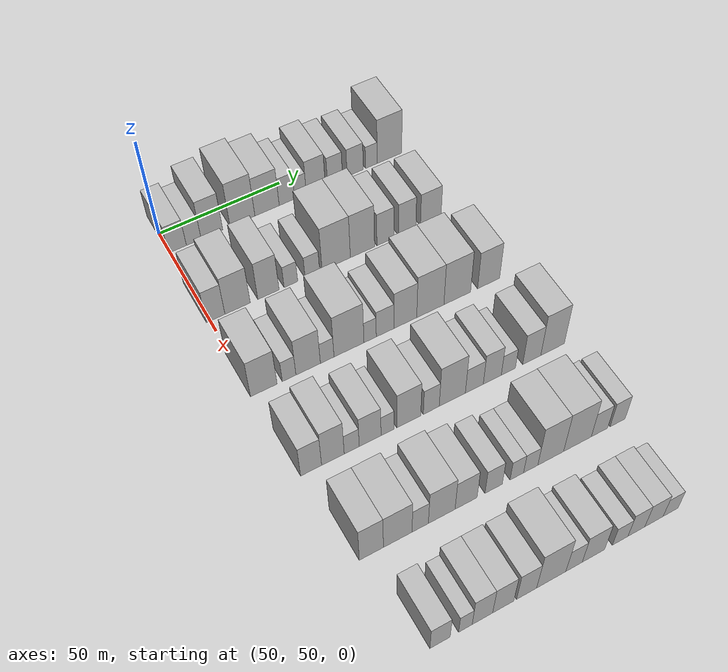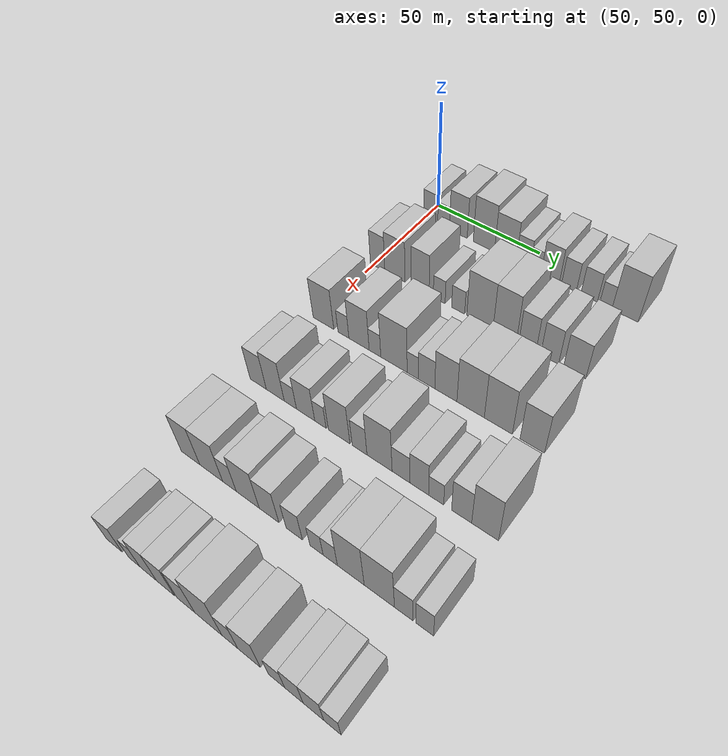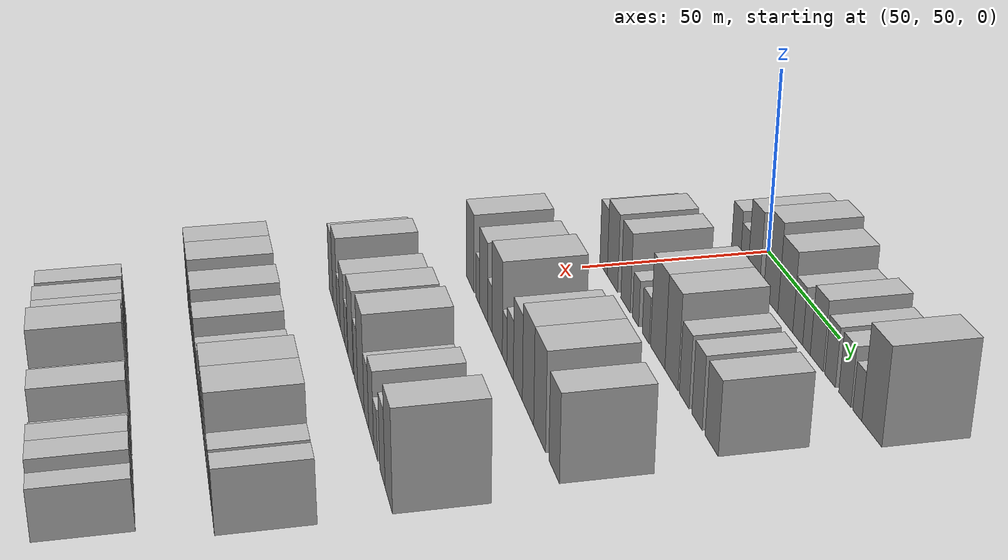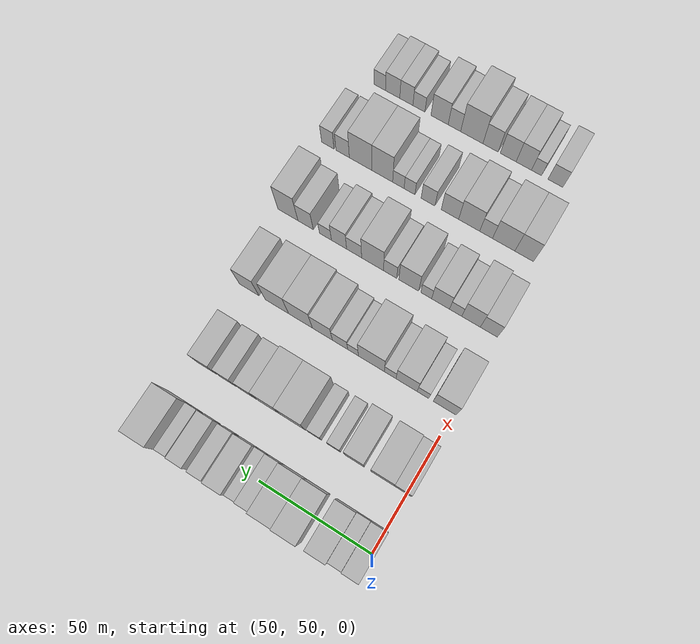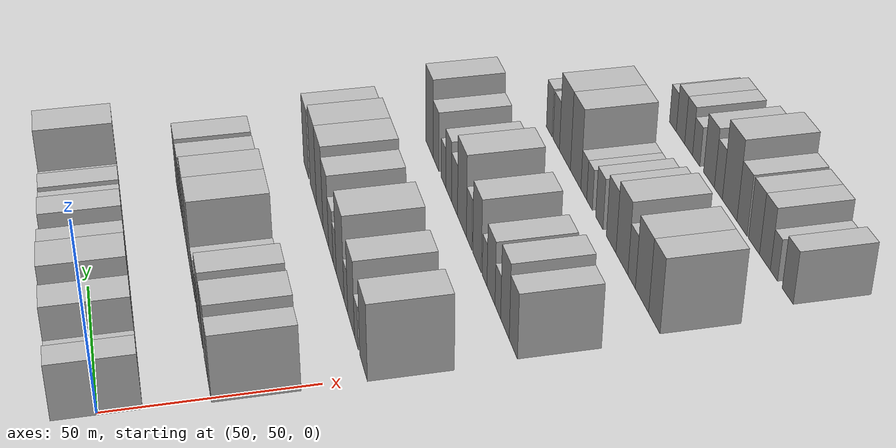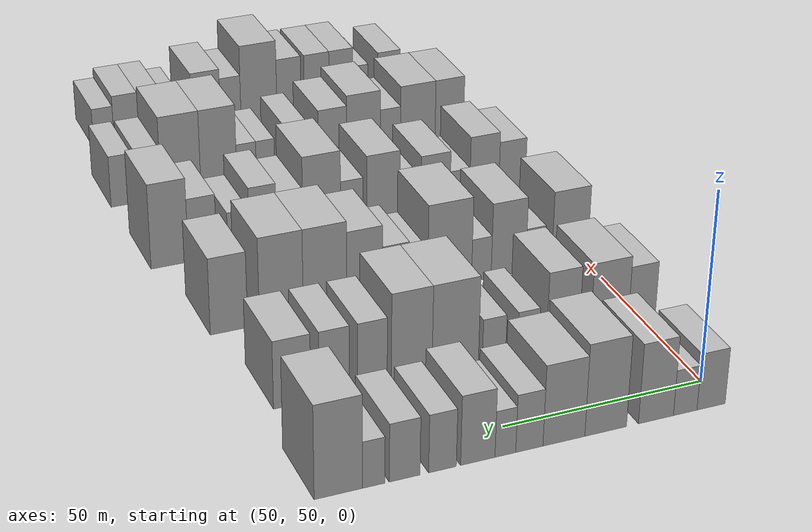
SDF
<sdf version="1.6">
 <world name="default">
  <model name="building_73">
   <static>1</static>
   <pose>50.0000 52.9617 0 0.000000 0.000000 0.000000</pose>
   <link name="link">
    <pose>0 0 7.50 0 0 0</pose>
    <collision name="collision"><geometry><box><size>20.0000 7.2405 15.0000</size></box></geometry></collision>
    <visual name="visual">
     <cast_shadows>0</cast_shadows>
     <geometry><box><size>20.0000 7.2405 15.0000</size></box></geometry>
     <material>
      <script>
       <uri>model://HANNAS_wall/materials/scripts</uri>
       <uri>model://HANNAS_wall/materials/textures</uri>
       <name>vrc/HANNAS_wall</name>
      </script>
     </material>
    </visual>
   </link>
  </model>
  <model name="building_74">
   <static>1</static>
   <pose>50.0000 59.5763 0 0.000000 0.000000 0.000000</pose>
   <link name="link">
    <pose>0 0 6.00 0 0 0</pose>
    <collision name="collision"><geometry><box><size>20.0000 5.9886 12.0000</size></box></geometry></collision>
    <visual name="visual">
     <cast_shadows>0</cast_shadows>
     <geometry><box><size>20.0000 5.9886 12.0000</size></box></geometry>
     <material>
      <script>
       <uri>model://HANNAS_wall/materials/scripts</uri>
       <uri>model://HANNAS_wall/materials/textures</uri>
       <name>vrc/HANNAS_wall</name>
      </script>
     </material>
    </visual>
   </link>
  </model>
  <model name="building_75">
   <static>1</static>
   <pose>50.0000 66.9861 0 0.000000 0.000000 0.000000</pose>
   <link name="link">
    <pose>0 0 10.50 0 0 0</pose>
    <collision name="collision"><geometry><box><size>20.0000 8.8310 21.0000</size></box></geometry></collision>
    <visual name="visual">
     <cast_shadows>0</cast_shadows>
     <geometry><box><size>20.0000 8.8310 21.0000</size></box></geometry>
     <material>
      <script>
       <uri>model://HANNAS_wall/materials/scripts</uri>
       <uri>model://HANNAS_wall/materials/textures</uri>
       <name>vrc/HANNAS_wall</name>
      </script>
     </material>
    </visual>
   </link>
  </model>
  <model name="building_76">
   <static>1</static>
   <pose>50.0000 79.5631 0 0.000000 0.000000 0.000000</pose>
   <link name="link">
    <pose>0 0 12.00 0 0 0</pose>
    <collision name="collision"><geometry><box><size>20.0000 10.3230 24.0000</size></box></geometry></collision>
    <visual name="visual">
     <cast_shadows>0</cast_shadows>
     <geometry><box><size>20.0000 10.3230 24.0000</size></box></geometry>
     <material>
      <script>
       <uri>model://HANNAS_wall/materials/scripts</uri>
       <uri>model://HANNAS_wall/materials/textures</uri>
       <name>vrc/HANNAS_wall</name>
      </script>
     </material>
    </visual>
   </link>
  </model>
  <model name="building_77">
   <static>1</static>
   <pose>50.0000 89.8498 0 0.000000 0.000000 0.000000</pose>
   <link name="link">
    <pose>0 0 10.50 0 0 0</pose>
    <collision name="collision"><geometry><box><size>20.0000 10.2505 21.0000</size></box></geometry></collision>
    <visual name="visual">
     <cast_shadows>0</cast_shadows>
     <geometry><box><size>20.0000 10.2505 21.0000</size></box></geometry>
     <material>
      <script>
       <uri>model://HANNAS_wall/materials/scripts</uri>
       <uri>model://HANNAS_wall/materials/textures</uri>
       <name>vrc/HANNAS_wall</name>
      </script>
     </material>
    </visual>
   </link>
  </model>
  <model name="building_78">
   <static>1</static>
   <pose>50.0000 98.2660 0 0.000000 0.000000 0.000000</pose>
   <link name="link">
    <pose>0 0 7.50 0 0 0</pose>
    <collision name="collision"><geometry><box><size>20.0000 6.5819 15.0000</size></box></geometry></collision>
    <visual name="visual">
     <cast_shadows>0</cast_shadows>
     <geometry><box><size>20.0000 6.5819 15.0000</size></box></geometry>
     <material>
      <script>
       <uri>model://HANNAS_wall/materials/scripts</uri>
       <uri>model://HANNAS_wall/materials/textures</uri>
       <name>vrc/HANNAS_wall</name>
      </script>
     </material>
    </visual>
   </link>
  </model>
  <model name="building_79">
   <static>1</static>
   <pose>50.0000 104.0453 0 0.000000 0.000000 0.000000</pose>
   <link name="link">
    <pose>0 0 6.00 0 0 0</pose>
    <collision name="collision"><geometry><box><size>20.0000 4.9766 12.0000</size></box></geometry></collision>
    <visual name="visual">
     <cast_shadows>0</cast_shadows>
     <geometry><box><size>20.0000 4.9766 12.0000</size></box></geometry>
     <material>
      <script>
       <uri>model://HANNAS_wall/materials/scripts</uri>
       <uri>model://HANNAS_wall/materials/textures</uri>
       <name>vrc/HANNAS_wall</name>
      </script>
     </material>
    </visual>
   </link>
  </model>
  <model name="building_80">
   <static>1</static>
   <pose>50.0000 110.6164 0 0.000000 0.000000 0.000000</pose>
   <link name="link">
    <pose>0 0 9.00 0 0 0</pose>
    <collision name="collision"><geometry><box><size>20.0000 8.1657 18.0000</size></box></geometry></collision>
    <visual name="visual">
     <cast_shadows>0</cast_shadows>
     <geometry><box><size>20.0000 8.1657 18.0000</size></box></geometry>
     <material>
      <script>
       <uri>model://HANNAS_wall/materials/scripts</uri>
       <uri>model://HANNAS_wall/materials/textures</uri>
       <name>vrc/HANNAS_wall</name>
      </script>
     </material>
    </visual>
   </link>
  </model>
  <model name="building_81">
   <static>1</static>
   <pose>50.0000 118.9523 0 0.000000 0.000000 0.000000</pose>
   <link name="link">
    <pose>0 0 7.50 0 0 0</pose>
    <collision name="collision"><geometry><box><size>20.0000 6.5061 15.0000</size></box></geometry></collision>
    <visual name="visual">
     <cast_shadows>0</cast_shadows>
     <geometry><box><size>20.0000 6.5061 15.0000</size></box></geometry>
     <material>
      <script>
       <uri>model://HANNAS_wall/materials/scripts</uri>
       <uri>model://HANNAS_wall/materials/textures</uri>
       <name>vrc/HANNAS_wall</name>
      </script>
     </material>
    </visual>
   </link>
  </model>
  <model name="building_82">
   <static>1</static>
   <pose>50.0000 127.7815 0 0.000000 0.000000 0.000000</pose>
   <link name="link">
    <pose>0 0 7.50 0 0 0</pose>
    <collision name="collision"><geometry><box><size>20.0000 7.1522 15.0000</size></box></geometry></collision>
    <visual name="visual">
     <cast_shadows>0</cast_shadows>
     <geometry><box><size>20.0000 7.1522 15.0000</size></box></geometry>
     <material>
      <script>
       <uri>model://HANNAS_wall/materials/scripts</uri>
       <uri>model://HANNAS_wall/materials/textures</uri>
       <name>vrc/HANNAS_wall</name>
      </script>
     </material>
    </visual>
   </link>
  </model>
  <model name="building_83">
   <static>1</static>
   <pose>50.0000 134.9458 0 0.000000 0.000000 0.000000</pose>
   <link name="link">
    <pose>0 0 6.00 0 0 0</pose>
    <collision name="collision"><geometry><box><size>20.0000 5.1764 12.0000</size></box></geometry></collision>
    <visual name="visual">
     <cast_shadows>0</cast_shadows>
     <geometry><box><size>20.0000 5.1764 12.0000</size></box></geometry>
     <material>
      <script>
       <uri>model://HANNAS_wall/materials/scripts</uri>
       <uri>model://HANNAS_wall/materials/textures</uri>
       <name>vrc/HANNAS_wall</name>
      </script>
     </material>
    </visual>
   </link>
  </model>
  <model name="building_84">
   <static>1</static>
   <pose>50.0000 143.0082 0 0.000000 0.000000 0.000000</pose>
   <link name="link">
    <pose>0 0 12.00 0 0 0</pose>
    <collision name="collision"><geometry><box><size>20.0000 10.9483 24.0000</size></box></geometry></collision>
    <visual name="visual">
     <cast_shadows>0</cast_shadows>
     <geometry><box><size>20.0000 10.9483 24.0000</size></box></geometry>
     <material>
      <script>
       <uri>model://HANNAS_wall/materials/scripts</uri>
       <uri>model://HANNAS_wall/materials/textures</uri>
       <name>vrc/HANNAS_wall</name>
      </script>
     </material>
    </visual>
   </link>
  </model>
  <model name="building_202">
   <static>1</static>
   <pose>85.0000 52.1849 0 0.000000 0.000000 0.000000</pose>
   <link name="link">
    <pose>0 0 9.00 0 0 0</pose>
    <collision name="collision"><geometry><box><size>20.0000 7.2502 18.0000</size></box></geometry></collision>
    <visual name="visual">
     <cast_shadows>0</cast_shadows>
     <geometry><box><size>20.0000 7.2502 18.0000</size></box></geometry>
     <material>
      <script>
       <uri>model://HANNAS_wall/materials/scripts</uri>
       <uri>model://HANNAS_wall/materials/textures</uri>
       <name>vrc/HANNAS_wall</name>
      </script>
     </material>
    </visual>
   </link>
  </model>
  <model name="building_203">
   <static>1</static>
   <pose>85.0000 60.8079 0 0.000000 0.000000 0.000000</pose>
   <link name="link">
    <pose>0 0 10.50 0 0 0</pose>
    <collision name="collision"><geometry><box><size>20.0000 9.9957 21.0000</size></box></geometry></collision>
    <visual name="visual">
     <cast_shadows>0</cast_shadows>
     <geometry><box><size>20.0000 9.9957 21.0000</size></box></geometry>
     <material>
      <script>
       <uri>model://HANNAS_wall/materials/scripts</uri>
       <uri>model://HANNAS_wall/materials/textures</uri>
       <name>vrc/HANNAS_wall</name>
      </script>
     </material>
    </visual>
   </link>
  </model>
  <model name="building_204">
   <static>1</static>
   <pose>85.0000 73.0740 0 0.000000 0.000000 0.000000</pose>
   <link name="link">
    <pose>0 0 10.50 0 0 0</pose>
    <collision name="collision"><geometry><box><size>20.0000 8.5366 21.0000</size></box></geometry></collision>
    <visual name="visual">
     <cast_shadows>0</cast_shadows>
     <geometry><box><size>20.0000 8.5366 21.0000</size></box></geometry>
     <material>
      <script>
       <uri>model://HANNAS_wall/materials/scripts</uri>
       <uri>model://HANNAS_wall/materials/textures</uri>
       <name>vrc/HANNAS_wall</name>
      </script>
     </material>
    </visual>
   </link>
  </model>
  <model name="building_205">
   <static>1</static>
   <pose>85.0000 82.1059 0 0.000000 0.000000 0.000000</pose>
   <link name="link">
    <pose>0 0 6.00 0 0 0</pose>
    <collision name="collision"><geometry><box><size>20.0000 5.5271 12.0000</size></box></geometry></collision>
    <visual name="visual">
     <cast_shadows>0</cast_shadows>
     <geometry><box><size>20.0000 5.5271 12.0000</size></box></geometry>
     <material>
      <script>
       <uri>model://HANNAS_wall/materials/scripts</uri>
       <uri>model://HANNAS_wall/materials/textures</uri>
       <name>vrc/HANNAS_wall</name>
      </script>
     </material>
    </visual>
   </link>
  </model>
  <model name="building_206">
   <static>1</static>
   <pose>85.0000 90.8589 0 0.000000 0.000000 0.000000</pose>
   <link name="link">
    <pose>0 0 6.00 0 0 0</pose>
    <collision name="collision"><geometry><box><size>20.0000 5.9788 12.0000</size></box></geometry></collision>
    <visual name="visual">
     <cast_shadows>0</cast_shadows>
     <geometry><box><size>20.0000 5.9788 12.0000</size></box></geometry>
     <material>
      <script>
       <uri>model://HANNAS_wall/materials/scripts</uri>
       <uri>model://HANNAS_wall/materials/textures</uri>
       <name>vrc/HANNAS_wall</name>
      </script>
     </material>
    </visual>
   </link>
  </model>
  <model name="building_207">
   <static>1</static>
   <pose>85.0000 100.7156 0 0.000000 0.000000 0.000000</pose>
   <link name="link">
    <pose>0 0 12.00 0 0 0</pose>
    <collision name="collision"><geometry><box><size>20.0000 11.7346 24.0000</size></box></geometry></collision>
    <visual name="visual">
     <cast_shadows>0</cast_shadows>
     <geometry><box><size>20.0000 11.7346 24.0000</size></box></geometry>
     <material>
      <script>
       <uri>model://HANNAS_wall/materials/scripts</uri>
       <uri>model://HANNAS_wall/materials/textures</uri>
       <name>vrc/HANNAS_wall</name>
      </script>
     </material>
    </visual>
   </link>
  </model>
  <model name="building_208">
   <static>1</static>
   <pose>85.0000 111.6747 0 0.000000 0.000000 0.000000</pose>
   <link name="link">
    <pose>0 0 12.00 0 0 0</pose>
    <collision name="collision"><geometry><box><size>20.0000 10.1837 24.0000</size></box></geometry></collision>
    <visual name="visual">
     <cast_shadows>0</cast_shadows>
     <geometry><box><size>20.0000 10.1837 24.0000</size></box></geometry>
     <material>
      <script>
       <uri>model://HANNAS_wall/materials/scripts</uri>
       <uri>model://HANNAS_wall/materials/textures</uri>
       <name>vrc/HANNAS_wall</name>
      </script>
     </material>
    </visual>
   </link>
  </model>
  <model name="building_209">
   <static>1</static>
   <pose>85.0000 121.4007 0 0.000000 0.000000 0.000000</pose>
   <link name="link">
    <pose>0 0 9.00 0 0 0</pose>
    <collision name="collision"><geometry><box><size>20.0000 7.2682 18.0000</size></box></geometry></collision>
    <visual name="visual">
     <cast_shadows>0</cast_shadows>
     <geometry><box><size>20.0000 7.2682 18.0000</size></box></geometry>
     <material>
      <script>
       <uri>model://HANNAS_wall/materials/scripts</uri>
       <uri>model://HANNAS_wall/materials/textures</uri>
       <name>vrc/HANNAS_wall</name>
      </script>
     </material>
    </visual>
   </link>
  </model>
  <model name="building_210">
   <static>1</static>
   <pose>85.0000 130.7273 0 0.000000 0.000000 0.000000</pose>
   <link name="link">
    <pose>0 0 9.00 0 0 0</pose>
    <collision name="collision"><geometry><box><size>20.0000 7.3851 18.0000</size></box></geometry></collision>
    <visual name="visual">
     <cast_shadows>0</cast_shadows>
     <geometry><box><size>20.0000 7.3851 18.0000</size></box></geometry>
     <material>
      <script>
       <uri>model://HANNAS_wall/materials/scripts</uri>
       <uri>model://HANNAS_wall/materials/textures</uri>
       <name>vrc/HANNAS_wall</name>
      </script>
     </material>
    </visual>
   </link>
  </model>
  <model name="building_211">
   <static>1</static>
   <pose>85.0000 140.9020 0 0.000000 0.000000 0.000000</pose>
   <link name="link">
    <pose>0 0 9.00 0 0 0</pose>
    <collision name="collision"><geometry><box><size>20.0000 8.9642 18.0000</size></box></geometry></collision>
    <visual name="visual">
     <cast_shadows>0</cast_shadows>
     <geometry><box><size>20.0000 8.9642 18.0000</size></box></geometry>
     <material>
      <script>
       <uri>model://HANNAS_wall/materials/scripts</uri>
       <uri>model://HANNAS_wall/materials/textures</uri>
       <name>vrc/HANNAS_wall</name>
      </script>
     </material>
    </visual>
   </link>
  </model>
  <model name="building_324">
   <static>1</static>
   <pose>120.0000 53.9357 0 0.000000 0.000000 0.000000</pose>
   <link name="link">
    <pose>0 0 10.50 0 0 0</pose>
    <collision name="collision"><geometry><box><size>20.0000 10.1104 21.0000</size></box></geometry></collision>
    <visual name="visual">
     <cast_shadows>0</cast_shadows>
     <geometry><box><size>20.0000 10.1104 21.0000</size></box></geometry>
     <material>
      <script>
       <uri>model://HANNAS_wall/materials/scripts</uri>
       <uri>model://HANNAS_wall/materials/textures</uri>
       <name>vrc/HANNAS_wall</name>
      </script>
     </material>
    </visual>
   </link>
  </model>
  <model name="building_325">
   <static>1</static>
   <pose>120.0000 63.6120 0 0.000000 0.000000 0.000000</pose>
   <link name="link">
    <pose>0 0 6.00 0 0 0</pose>
    <collision name="collision"><geometry><box><size>20.0000 5.2421 12.0000</size></box></geometry></collision>
    <visual name="visual">
     <cast_shadows>0</cast_shadows>
     <geometry><box><size>20.0000 5.2421 12.0000</size></box></geometry>
     <material>
      <script>
       <uri>model://HANNAS_wall/materials/scripts</uri>
       <uri>model://HANNAS_wall/materials/textures</uri>
       <name>vrc/HANNAS_wall</name>
      </script>
     </material>
    </visual>
   </link>
  </model>
  <model name="building_326">
   <static>1</static>
   <pose>120.0000 70.9818 0 0.000000 0.000000 0.000000</pose>
   <link name="link">
    <pose>0 0 10.50 0 0 0</pose>
    <collision name="collision"><geometry><box><size>20.0000 9.4974 21.0000</size></box></geometry></collision>
    <visual name="visual">
     <cast_shadows>0</cast_shadows>
     <geometry><box><size>20.0000 9.4974 21.0000</size></box></geometry>
     <material>
      <script>
       <uri>model://HANNAS_wall/materials/scripts</uri>
       <uri>model://HANNAS_wall/materials/textures</uri>
       <name>vrc/HANNAS_wall</name>
      </script>
     </material>
    </visual>
   </link>
  </model>
  <model name="building_327">
   <static>1</static>
   <pose>120.0000 78.4007 0 0.000000 0.000000 0.000000</pose>
   <link name="link">
    <pose>0 0 6.00 0 0 0</pose>
    <collision name="collision"><geometry><box><size>20.0000 5.3404 12.0000</size></box></geometry></collision>
    <visual name="visual">
     <cast_shadows>0</cast_shadows>
     <geometry><box><size>20.0000 5.3404 12.0000</size></box></geometry>
     <material>
      <script>
       <uri>model://HANNAS_wall/materials/scripts</uri>
       <uri>model://HANNAS_wall/materials/textures</uri>
       <name>vrc/HANNAS_wall</name>
      </script>
     </material>
    </visual>
   </link>
  </model>
  <model name="building_328">
   <static>1</static>
   <pose>120.0000 87.0078 0 0.000000 0.000000 0.000000</pose>
   <link name="link">
    <pose>0 0 12.00 0 0 0</pose>
    <collision name="collision"><geometry><box><size>20.0000 11.8738 24.0000</size></box></geometry></collision>
    <visual name="visual">
     <cast_shadows>0</cast_shadows>
     <geometry><box><size>20.0000 11.8738 24.0000</size></box></geometry>
     <material>
      <script>
       <uri>model://HANNAS_wall/materials/scripts</uri>
       <uri>model://HANNAS_wall/materials/textures</uri>
       <name>vrc/HANNAS_wall</name>
      </script>
     </material>
    </visual>
   </link>
  </model>
  <model name="building_329">
   <static>1</static>
   <pose>120.0000 95.4129 0 0.000000 0.000000 0.000000</pose>
   <link name="link">
    <pose>0 0 6.00 0 0 0</pose>
    <collision name="collision"><geometry><box><size>20.0000 4.9363 12.0000</size></box></geometry></collision>
    <visual name="visual">
     <cast_shadows>0</cast_shadows>
     <geometry><box><size>20.0000 4.9363 12.0000</size></box></geometry>
     <material>
      <script>
       <uri>model://HANNAS_wall/materials/scripts</uri>
       <uri>model://HANNAS_wall/materials/textures</uri>
       <name>vrc/HANNAS_wall</name>
      </script>
     </material>
    </visual>
   </link>
  </model>
  <model name="building_330">
   <static>1</static>
   <pose>120.0000 101.4357 0 0.000000 0.000000 0.000000</pose>
   <link name="link">
    <pose>0 0 7.50 0 0 0</pose>
    <collision name="collision"><geometry><box><size>20.0000 7.1093 15.0000</size></box></geometry></collision>
    <visual name="visual">
     <cast_shadows>0</cast_shadows>
     <geometry><box><size>20.0000 7.1093 15.0000</size></box></geometry>
     <material>
      <script>
       <uri>model://HANNAS_wall/materials/scripts</uri>
       <uri>model://HANNAS_wall/materials/textures</uri>
       <name>vrc/HANNAS_wall</name>
      </script>
     </material>
    </visual>
   </link>
  </model>
  <model name="building_331">
   <static>1</static>
   <pose>120.0000 109.6641 0 0.000000 0.000000 0.000000</pose>
   <link name="link">
    <pose>0 0 10.50 0 0 0</pose>
    <collision name="collision"><geometry><box><size>20.0000 9.3474 21.0000</size></box></geometry></collision>
    <visual name="visual">
     <cast_shadows>0</cast_shadows>
     <geometry><box><size>20.0000 9.3474 21.0000</size></box></geometry>
     <material>
      <script>
       <uri>model://HANNAS_wall/materials/scripts</uri>
       <uri>model://HANNAS_wall/materials/textures</uri>
       <name>vrc/HANNAS_wall</name>
      </script>
     </material>
    </visual>
   </link>
  </model>
  <model name="building_332">
   <static>1</static>
   <pose>120.0000 119.9621 0 0.000000 0.000000 0.000000</pose>
   <link name="link">
    <pose>0 0 12.00 0 0 0</pose>
    <collision name="collision"><geometry><box><size>20.0000 11.2486 24.0000</size></box></geometry></collision>
    <visual name="visual">
     <cast_shadows>0</cast_shadows>
     <geometry><box><size>20.0000 11.2486 24.0000</size></box></geometry>
     <material>
      <script>
       <uri>model://HANNAS_wall/materials/scripts</uri>
       <uri>model://HANNAS_wall/materials/textures</uri>
       <name>vrc/HANNAS_wall</name>
      </script>
     </material>
    </visual>
   </link>
  </model>
  <model name="building_333">
   <static>1</static>
   <pose>120.0000 131.1852 0 0.000000 0.000000 0.000000</pose>
   <link name="link">
    <pose>0 0 12.00 0 0 0</pose>
    <collision name="collision"><geometry><box><size>20.0000 11.1977 24.0000</size></box></geometry></collision>
    <visual name="visual">
     <cast_shadows>0</cast_shadows>
     <geometry><box><size>20.0000 11.1977 24.0000</size></box></geometry>
     <material>
      <script>
       <uri>model://HANNAS_wall/materials/scripts</uri>
       <uri>model://HANNAS_wall/materials/textures</uri>
       <name>vrc/HANNAS_wall</name>
      </script>
     </material>
    </visual>
   </link>
  </model>
  <model name="building_334">
   <static>1</static>
   <pose>120.0000 144.4804 0 0.000000 0.000000 0.000000</pose>
   <link name="link">
    <pose>0 0 10.50 0 0 0</pose>
    <collision name="collision"><geometry><box><size>20.0000 9.3926 21.0000</size></box></geometry></collision>
    <visual name="visual">
     <cast_shadows>0</cast_shadows>
     <geometry><box><size>20.0000 9.3926 21.0000</size></box></geometry>
     <material>
      <script>
       <uri>model://HANNAS_wall/materials/scripts</uri>
       <uri>model://HANNAS_wall/materials/textures</uri>
       <name>vrc/HANNAS_wall</name>
      </script>
     </material>
    </visual>
   </link>
  </model>
  <model name="building_446">
   <static>1</static>
   <pose>155.0000 53.8749 0 0.000000 0.000000 0.000000</pose>
   <link name="link">
    <pose>0 0 9.00 0 0 0</pose>
    <collision name="collision"><geometry><box><size>20.0000 7.7621 18.0000</size></box></geometry></collision>
    <visual name="visual">
     <cast_shadows>0</cast_shadows>
     <geometry><box><size>20.0000 7.7621 18.0000</size></box></geometry>
     <material>
      <script>
       <uri>model://HANNAS_wall/materials/scripts</uri>
       <uri>model://HANNAS_wall/materials/textures</uri>
       <name>vrc/HANNAS_wall</name>
      </script>
     </material>
    </visual>
   </link>
  </model>
  <model name="building_447">
   <static>1</static>
   <pose>155.0000 61.9628 0 0.000000 0.000000 0.000000</pose>
   <link name="link">
    <pose>0 0 10.50 0 0 0</pose>
    <collision name="collision"><geometry><box><size>20.0000 8.4136 21.0000</size></box></geometry></collision>
    <visual name="visual">
     <cast_shadows>0</cast_shadows>
     <geometry><box><size>20.0000 8.4136 21.0000</size></box></geometry>
     <material>
      <script>
       <uri>model://HANNAS_wall/materials/scripts</uri>
       <uri>model://HANNAS_wall/materials/textures</uri>
       <name>vrc/HANNAS_wall</name>
      </script>
     </material>
    </visual>
   </link>
  </model>
  <model name="building_448">
   <static>1</static>
   <pose>155.0000 68.9852 0 0.000000 0.000000 0.000000</pose>
   <link name="link">
    <pose>0 0 6.00 0 0 0</pose>
    <collision name="collision"><geometry><box><size>20.0000 5.6311 12.0000</size></box></geometry></collision>
    <visual name="visual">
     <cast_shadows>0</cast_shadows>
     <geometry><box><size>20.0000 5.6311 12.0000</size></box></geometry>
     <material>
      <script>
       <uri>model://HANNAS_wall/materials/scripts</uri>
       <uri>model://HANNAS_wall/materials/textures</uri>
       <name>vrc/HANNAS_wall</name>
      </script>
     </material>
    </visual>
   </link>
  </model>
  <model name="building_449">
   <static>1</static>
   <pose>155.0000 75.9372 0 0.000000 0.000000 0.000000</pose>
   <link name="link">
    <pose>0 0 9.00 0 0 0</pose>
    <collision name="collision"><geometry><box><size>20.0000 8.2730 18.0000</size></box></geometry></collision>
    <visual name="visual">
     <cast_shadows>0</cast_shadows>
     <geometry><box><size>20.0000 8.2730 18.0000</size></box></geometry>
     <material>
      <script>
       <uri>model://HANNAS_wall/materials/scripts</uri>
       <uri>model://HANNAS_wall/materials/textures</uri>
       <name>vrc/HANNAS_wall</name>
      </script>
     </material>
    </visual>
   </link>
  </model>
  <model name="building_450">
   <static>1</static>
   <pose>155.0000 82.5974 0 0.000000 0.000000 0.000000</pose>
   <link name="link">
    <pose>0 0 6.00 0 0 0</pose>
    <collision name="collision"><geometry><box><size>20.0000 5.0472 12.0000</size></box></geometry></collision>
    <visual name="visual">
     <cast_shadows>0</cast_shadows>
     <geometry><box><size>20.0000 5.0472 12.0000</size></box></geometry>
     <material>
      <script>
       <uri>model://HANNAS_wall/materials/scripts</uri>
       <uri>model://HANNAS_wall/materials/textures</uri>
       <name>vrc/HANNAS_wall</name>
      </script>
     </material>
    </visual>
   </link>
  </model>
  <model name="building_451">
   <static>1</static>
   <pose>155.0000 90.7631 0 0.000000 0.000000 0.000000</pose>
   <link name="link">
    <pose>0 0 10.50 0 0 0</pose>
    <collision name="collision"><geometry><box><size>20.0000 9.2842 21.0000</size></box></geometry></collision>
    <visual name="visual">
     <cast_shadows>0</cast_shadows>
     <geometry><box><size>20.0000 9.2842 21.0000</size></box></geometry>
     <material>
      <script>
       <uri>model://HANNAS_wall/materials/scripts</uri>
       <uri>model://HANNAS_wall/materials/textures</uri>
       <name>vrc/HANNAS_wall</name>
      </script>
     </material>
    </visual>
   </link>
  </model>
  <model name="building_452">
   <static>1</static>
   <pose>155.0000 99.5232 0 0.000000 0.000000 0.000000</pose>
   <link name="link">
    <pose>0 0 7.50 0 0 0</pose>
    <collision name="collision"><geometry><box><size>20.0000 6.2359 15.0000</size></box></geometry></collision>
    <visual name="visual">
     <cast_shadows>0</cast_shadows>
     <geometry><box><size>20.0000 6.2359 15.0000</size></box></geometry>
     <material>
      <script>
       <uri>model://HANNAS_wall/materials/scripts</uri>
       <uri>model://HANNAS_wall/materials/textures</uri>
       <name>vrc/HANNAS_wall</name>
      </script>
     </material>
    </visual>
   </link>
  </model>
  <model name="building_453">
   <static>1</static>
   <pose>155.0000 107.8272 0 0.000000 0.000000 0.000000</pose>
   <link name="link">
    <pose>0 0 12.00 0 0 0</pose>
    <collision name="collision"><geometry><box><size>20.0000 10.3722 24.0000</size></box></geometry></collision>
    <visual name="visual">
     <cast_shadows>0</cast_shadows>
     <geometry><box><size>20.0000 10.3722 24.0000</size></box></geometry>
     <material>
      <script>
       <uri>model://HANNAS_wall/materials/scripts</uri>
       <uri>model://HANNAS_wall/materials/textures</uri>
       <name>vrc/HANNAS_wall</name>
      </script>
     </material>
    </visual>
   </link>
  </model>
  <model name="building_454">
   <static>1</static>
   <pose>155.0000 116.6088 0 0.000000 0.000000 0.000000</pose>
   <link name="link">
    <pose>0 0 7.50 0 0 0</pose>
    <collision name="collision"><geometry><box><size>20.0000 7.1911 15.0000</size></box></geometry></collision>
    <visual name="visual">
     <cast_shadows>0</cast_shadows>
     <geometry><box><size>20.0000 7.1911 15.0000</size></box></geometry>
     <material>
      <script>
       <uri>model://HANNAS_wall/materials/scripts</uri>
       <uri>model://HANNAS_wall/materials/textures</uri>
       <name>vrc/HANNAS_wall</name>
      </script>
     </material>
    </visual>
   </link>
  </model>
  <model name="building_455">
   <static>1</static>
   <pose>155.0000 123.8518 0 0.000000 0.000000 0.000000</pose>
   <link name="link">
    <pose>0 0 9.00 0 0 0</pose>
    <collision name="collision"><geometry><box><size>20.0000 7.2949 18.0000</size></box></geometry></collision>
    <visual name="visual">
     <cast_shadows>0</cast_shadows>
     <geometry><box><size>20.0000 7.2949 18.0000</size></box></geometry>
     <material>
      <script>
       <uri>model://HANNAS_wall/materials/scripts</uri>
       <uri>model://HANNAS_wall/materials/textures</uri>
       <name>vrc/HANNAS_wall</name>
      </script>
     </material>
    </visual>
   </link>
  </model>
  <model name="building_456">
   <static>1</static>
   <pose>155.0000 130.3995 0 0.000000 0.000000 0.000000</pose>
   <link name="link">
    <pose>0 0 6.00 0 0 0</pose>
    <collision name="collision"><geometry><box><size>20.0000 5.8006 12.0000</size></box></geometry></collision>
    <visual name="visual">
     <cast_shadows>0</cast_shadows>
     <geometry><box><size>20.0000 5.8006 12.0000</size></box></geometry>
     <material>
      <script>
       <uri>model://HANNAS_wall/materials/scripts</uri>
       <uri>model://HANNAS_wall/materials/textures</uri>
       <name>vrc/HANNAS_wall</name>
      </script>
     </material>
    </visual>
   </link>
  </model>
  <model name="building_457">
   <static>1</static>
   <pose>155.0000 140.0595 0 0.000000 0.000000 0.000000</pose>
   <link name="link">
    <pose>0 0 9.00 0 0 0</pose>
    <collision name="collision"><geometry><box><size>20.0000 7.5194 18.0000</size></box></geometry></collision>
    <visual name="visual">
     <cast_shadows>0</cast_shadows>
     <geometry><box><size>20.0000 7.5194 18.0000</size></box></geometry>
     <material>
      <script>
       <uri>model://HANNAS_wall/materials/scripts</uri>
       <uri>model://HANNAS_wall/materials/textures</uri>
       <name>vrc/HANNAS_wall</name>
      </script>
     </material>
    </visual>
   </link>
  </model>
  <model name="building_458">
   <static>1</static>
   <pose>155.0000 148.7358 0 0.000000 0.000000 0.000000</pose>
   <link name="link">
    <pose>0 0 12.00 0 0 0</pose>
    <collision name="collision"><geometry><box><size>20.0000 9.8332 24.0000</size></box></geometry></collision>
    <visual name="visual">
     <cast_shadows>0</cast_shadows>
     <geometry><box><size>20.0000 9.8332 24.0000</size></box></geometry>
     <material>
      <script>
       <uri>model://HANNAS_wall/materials/scripts</uri>
       <uri>model://HANNAS_wall/materials/textures</uri>
       <name>vrc/HANNAS_wall</name>
      </script>
     </material>
    </visual>
   </link>
  </model>
  <model name="building_577">
   <static>1</static>
   <pose>190.0000 56.8908 0 0.000000 0.000000 0.000000</pose>
   <link name="link">
    <pose>0 0 10.50 0 0 0</pose>
    <collision name="collision"><geometry><box><size>20.0000 8.6311 21.0000</size></box></geometry></collision>
    <visual name="visual">
     <cast_shadows>0</cast_shadows>
     <geometry><box><size>20.0000 8.6311 21.0000</size></box></geometry>
     <material>
      <script>
       <uri>model://HANNAS_wall/materials/scripts</uri>
       <uri>model://HANNAS_wall/materials/textures</uri>
       <name>vrc/HANNAS_wall</name>
      </script>
     </material>
    </visual>
   </link>
  </model>
  <model name="building_578">
   <static>1</static>
   <pose>190.0000 66.4030 0 0.000000 0.000000 0.000000</pose>
   <link name="link">
    <pose>0 0 10.50 0 0 0</pose>
    <collision name="collision"><geometry><box><size>20.0000 10.3934 21.0000</size></box></geometry></collision>
    <visual name="visual">
     <cast_shadows>0</cast_shadows>
     <geometry><box><size>20.0000 10.3934 21.0000</size></box></geometry>
     <material>
      <script>
       <uri>model://HANNAS_wall/materials/scripts</uri>
       <uri>model://HANNAS_wall/materials/textures</uri>
       <name>vrc/HANNAS_wall</name>
      </script>
     </material>
    </visual>
   </link>
  </model>
  <model name="building_579">
   <static>1</static>
   <pose>190.0000 74.6130 0 0.000000 0.000000 0.000000</pose>
   <link name="link">
    <pose>0 0 7.50 0 0 0</pose>
    <collision name="collision"><geometry><box><size>20.0000 6.0265 15.0000</size></box></geometry></collision>
    <visual name="visual">
     <cast_shadows>0</cast_shadows>
     <geometry><box><size>20.0000 6.0265 15.0000</size></box></geometry>
     <material>
      <script>
       <uri>model://HANNAS_wall/materials/scripts</uri>
       <uri>model://HANNAS_wall/materials/textures</uri>
       <name>vrc/HANNAS_wall</name>
      </script>
     </material>
    </visual>
   </link>
  </model>
  <model name="building_580">
   <static>1</static>
   <pose>190.0000 82.6023 0 0.000000 0.000000 0.000000</pose>
   <link name="link">
    <pose>0 0 10.50 0 0 0</pose>
    <collision name="collision"><geometry><box><size>20.0000 9.9522 21.0000</size></box></geometry></collision>
    <visual name="visual">
     <cast_shadows>0</cast_shadows>
     <geometry><box><size>20.0000 9.9522 21.0000</size></box></geometry>
     <material>
      <script>
       <uri>model://HANNAS_wall/materials/scripts</uri>
       <uri>model://HANNAS_wall/materials/textures</uri>
       <name>vrc/HANNAS_wall</name>
      </script>
     </material>
    </visual>
   </link>
  </model>
  <model name="building_581">
   <static>1</static>
   <pose>190.0000 91.7249 0 0.000000 0.000000 0.000000</pose>
   <link name="link">
    <pose>0 0 9.00 0 0 0</pose>
    <collision name="collision"><geometry><box><size>20.0000 8.2929 18.0000</size></box></geometry></collision>
    <visual name="visual">
     <cast_shadows>0</cast_shadows>
     <geometry><box><size>20.0000 8.2929 18.0000</size></box></geometry>
     <material>
      <script>
       <uri>model://HANNAS_wall/materials/scripts</uri>
       <uri>model://HANNAS_wall/materials/textures</uri>
       <name>vrc/HANNAS_wall</name>
      </script>
     </material>
    </visual>
   </link>
  </model>
  <model name="building_582">
   <static>1</static>
   <pose>190.0000 102.1905 0 0.000000 0.000000 0.000000</pose>
   <link name="link">
    <pose>0 0 7.50 0 0 0</pose>
    <collision name="collision"><geometry><box><size>20.0000 6.6384 15.0000</size></box></geometry></collision>
    <visual name="visual">
     <cast_shadows>0</cast_shadows>
     <geometry><box><size>20.0000 6.6384 15.0000</size></box></geometry>
     <material>
      <script>
       <uri>model://HANNAS_wall/materials/scripts</uri>
       <uri>model://HANNAS_wall/materials/textures</uri>
       <name>vrc/HANNAS_wall</name>
      </script>
     </material>
    </visual>
   </link>
  </model>
  <model name="building_583">
   <static>1</static>
   <pose>190.0000 111.1374 0 0.000000 0.000000 0.000000</pose>
   <link name="link">
    <pose>0 0 6.00 0 0 0</pose>
    <collision name="collision"><geometry><box><size>20.0000 5.2555 12.0000</size></box></geometry></collision>
    <visual name="visual">
     <cast_shadows>0</cast_shadows>
     <geometry><box><size>20.0000 5.2555 12.0000</size></box></geometry>
     <material>
      <script>
       <uri>model://HANNAS_wall/materials/scripts</uri>
       <uri>model://HANNAS_wall/materials/textures</uri>
       <name>vrc/HANNAS_wall</name>
      </script>
     </material>
    </visual>
   </link>
  </model>
  <model name="building_584">
   <static>1</static>
   <pose>190.0000 116.5490 0 0.000000 0.000000 0.000000</pose>
   <link name="link">
    <pose>0 0 6.00 0 0 0</pose>
    <collision name="collision"><geometry><box><size>20.0000 5.5675 12.0000</size></box></geometry></collision>
    <visual name="visual">
     <cast_shadows>0</cast_shadows>
     <geometry><box><size>20.0000 5.5675 12.0000</size></box></geometry>
     <material>
      <script>
       <uri>model://HANNAS_wall/materials/scripts</uri>
       <uri>model://HANNAS_wall/materials/textures</uri>
       <name>vrc/HANNAS_wall</name>
      </script>
     </material>
    </visual>
   </link>
  </model>
  <model name="building_585">
   <static>1</static>
   <pose>190.0000 124.4283 0 0.000000 0.000000 0.000000</pose>
   <link name="link">
    <pose>0 0 12.00 0 0 0</pose>
    <collision name="collision"><geometry><box><size>20.0000 10.1912 24.0000</size></box></geometry></collision>
    <visual name="visual">
     <cast_shadows>0</cast_shadows>
     <geometry><box><size>20.0000 10.1912 24.0000</size></box></geometry>
     <material>
      <script>
       <uri>model://HANNAS_wall/materials/scripts</uri>
       <uri>model://HANNAS_wall/materials/textures</uri>
       <name>vrc/HANNAS_wall</name>
      </script>
     </material>
    </visual>
   </link>
  </model>
  <model name="building_586">
   <static>1</static>
   <pose>190.0000 135.0827 0 0.000000 0.000000 0.000000</pose>
   <link name="link">
    <pose>0 0 12.00 0 0 0</pose>
    <collision name="collision"><geometry><box><size>20.0000 11.1175 24.0000</size></box></geometry></collision>
    <visual name="visual">
     <cast_shadows>0</cast_shadows>
     <geometry><box><size>20.0000 11.1175 24.0000</size></box></geometry>
     <material>
      <script>
       <uri>model://HANNAS_wall/materials/scripts</uri>
       <uri>model://HANNAS_wall/materials/textures</uri>
       <name>vrc/HANNAS_wall</name>
      </script>
     </material>
    </visual>
   </link>
  </model>
  <model name="building_587">
   <static>1</static>
   <pose>190.0000 143.9588 0 0.000000 0.000000 0.000000</pose>
   <link name="link">
    <pose>0 0 7.50 0 0 0</pose>
    <collision name="collision"><geometry><box><size>20.0000 6.6347 15.0000</size></box></geometry></collision>
    <visual name="visual">
     <cast_shadows>0</cast_shadows>
     <geometry><box><size>20.0000 6.6347 15.0000</size></box></geometry>
     <material>
      <script>
       <uri>model://HANNAS_wall/materials/scripts</uri>
       <uri>model://HANNAS_wall/materials/textures</uri>
       <name>vrc/HANNAS_wall</name>
      </script>
     </material>
    </visual>
   </link>
  </model>
  <model name="building_588">
   <static>1</static>
   <pose>190.0000 151.3617 0 0.000000 0.000000 0.000000</pose>
   <link name="link">
    <pose>0 0 7.50 0 0 0</pose>
    <collision name="collision"><geometry><box><size>20.0000 6.1712 15.0000</size></box></geometry></collision>
    <visual name="visual">
     <cast_shadows>0</cast_shadows>
     <geometry><box><size>20.0000 6.1712 15.0000</size></box></geometry>
     <material>
      <script>
       <uri>model://HANNAS_wall/materials/scripts</uri>
       <uri>model://HANNAS_wall/materials/textures</uri>
       <name>vrc/HANNAS_wall</name>
      </script>
     </material>
    </visual>
   </link>
  </model>
  <model name="building_704">
   <static>1</static>
   <pose>225.0000 60.9635 0 0.000000 0.000000 0.000000</pose>
   <link name="link">
    <pose>0 0 7.50 0 0 0</pose>
    <collision name="collision"><geometry><box><size>20.0000 7.0684 15.0000</size></box></geometry></collision>
    <visual name="visual">
     <cast_shadows>0</cast_shadows>
     <geometry><box><size>20.0000 7.0684 15.0000</size></box></geometry>
     <material>
      <script>
       <uri>model://HANNAS_wall/materials/scripts</uri>
       <uri>model://HANNAS_wall/materials/textures</uri>
       <name>vrc/HANNAS_wall</name>
      </script>
     </material>
    </visual>
   </link>
  </model>
  <model name="building_705">
   <static>1</static>
   <pose>225.0000 69.9092 0 0.000000 0.000000 0.000000</pose>
   <link name="link">
    <pose>0 0 6.00 0 0 0</pose>
    <collision name="collision"><geometry><box><size>20.0000 4.8230 12.0000</size></box></geometry></collision>
    <visual name="visual">
     <cast_shadows>0</cast_shadows>
     <geometry><box><size>20.0000 4.8230 12.0000</size></box></geometry>
     <material>
      <script>
       <uri>model://HANNAS_wall/materials/scripts</uri>
       <uri>model://HANNAS_wall/materials/textures</uri>
       <name>vrc/HANNAS_wall</name>
      </script>
     </material>
    </visual>
   </link>
  </model>
  <model name="building_706">
   <static>1</static>
   <pose>225.0000 75.9785 0 0.000000 0.000000 0.000000</pose>
   <link name="link">
    <pose>0 0 9.00 0 0 0</pose>
    <collision name="collision"><geometry><box><size>20.0000 7.3156 18.0000</size></box></geometry></collision>
    <visual name="visual">
     <cast_shadows>0</cast_shadows>
     <geometry><box><size>20.0000 7.3156 18.0000</size></box></geometry>
     <material>
      <script>
       <uri>model://HANNAS_wall/materials/scripts</uri>
       <uri>model://HANNAS_wall/materials/textures</uri>
       <name>vrc/HANNAS_wall</name>
      </script>
     </material>
    </visual>
   </link>
  </model>
  <model name="building_707">
   <static>1</static>
   <pose>225.0000 83.4585 0 0.000000 0.000000 0.000000</pose>
   <link name="link">
    <pose>0 0 9.00 0 0 0</pose>
    <collision name="collision"><geometry><box><size>20.0000 7.6444 18.0000</size></box></geometry></collision>
    <visual name="visual">
     <cast_shadows>0</cast_shadows>
     <geometry><box><size>20.0000 7.6444 18.0000</size></box></geometry>
     <material>
      <script>
       <uri>model://HANNAS_wall/materials/scripts</uri>
       <uri>model://HANNAS_wall/materials/textures</uri>
       <name>vrc/HANNAS_wall</name>
      </script>
     </material>
    </visual>
   </link>
  </model>
  <model name="building_708">
   <static>1</static>
   <pose>225.0000 91.9685 0 0.000000 0.000000 0.000000</pose>
   <link name="link">
    <pose>0 0 9.00 0 0 0</pose>
    <collision name="collision"><geometry><box><size>20.0000 7.3757 18.0000</size></box></geometry></collision>
    <visual name="visual">
     <cast_shadows>0</cast_shadows>
     <geometry><box><size>20.0000 7.3757 18.0000</size></box></geometry>
     <material>
      <script>
       <uri>model://HANNAS_wall/materials/scripts</uri>
       <uri>model://HANNAS_wall/materials/textures</uri>
       <name>vrc/HANNAS_wall</name>
      </script>
     </material>
    </visual>
   </link>
  </model>
  <model name="building_709">
   <static>1</static>
   <pose>225.0000 101.0898 0 0.000000 0.000000 0.000000</pose>
   <link name="link">
    <pose>0 0 12.00 0 0 0</pose>
    <collision name="collision"><geometry><box><size>20.0000 10.8668 24.0000</size></box></geometry></collision>
    <visual name="visual">
     <cast_shadows>0</cast_shadows>
     <geometry><box><size>20.0000 10.8668 24.0000</size></box></geometry>
     <material>
      <script>
       <uri>model://HANNAS_wall/materials/scripts</uri>
       <uri>model://HANNAS_wall/materials/textures</uri>
       <name>vrc/HANNAS_wall</name>
      </script>
     </material>
    </visual>
   </link>
  </model>
  <model name="building_710">
   <static>1</static>
   <pose>225.0000 109.5959 0 0.000000 0.000000 0.000000</pose>
   <link name="link">
    <pose>0 0 7.50 0 0 0</pose>
    <collision name="collision"><geometry><box><size>20.0000 6.1454 15.0000</size></box></geometry></collision>
    <visual name="visual">
     <cast_shadows>0</cast_shadows>
     <geometry><box><size>20.0000 6.1454 15.0000</size></box></geometry>
     <material>
      <script>
       <uri>model://HANNAS_wall/materials/scripts</uri>
       <uri>model://HANNAS_wall/materials/textures</uri>
       <name>vrc/HANNAS_wall</name>
      </script>
     </material>
    </visual>
   </link>
  </model>
  <model name="building_711">
   <static>1</static>
   <pose>225.0000 116.9276 0 0.000000 0.000000 0.000000</pose>
   <link name="link">
    <pose>0 0 9.00 0 0 0</pose>
    <collision name="collision"><geometry><box><size>20.0000 8.5181 18.0000</size></box></geometry></collision>
    <visual name="visual">
     <cast_shadows>0</cast_shadows>
     <geometry><box><size>20.0000 8.5181 18.0000</size></box></geometry>
     <material>
      <script>
       <uri>model://HANNAS_wall/materials/scripts</uri>
       <uri>model://HANNAS_wall/materials/textures</uri>
       <name>vrc/HANNAS_wall</name>
      </script>
     </material>
    </visual>
   </link>
  </model>
  <model name="building_712">
   <static>1</static>
   <pose>225.0000 127.1859 0 0.000000 0.000000 0.000000</pose>
   <link name="link">
    <pose>0 0 6.00 0 0 0</pose>
    <collision name="collision"><geometry><box><size>20.0000 5.9984 12.0000</size></box></geometry></collision>
    <visual name="visual">
     <cast_shadows>0</cast_shadows>
     <geometry><box><size>20.0000 5.9984 12.0000</size></box></geometry>
     <material>
      <script>
       <uri>model://HANNAS_wall/materials/scripts</uri>
       <uri>model://HANNAS_wall/materials/textures</uri>
       <name>vrc/HANNAS_wall</name>
      </script>
     </material>
    </visual>
   </link>
  </model>
  <model name="building_713">
   <static>1</static>
   <pose>225.0000 133.4804 0 0.000000 0.000000 0.000000</pose>
   <link name="link">
    <pose>0 0 7.50 0 0 0</pose>
    <collision name="collision"><geometry><box><size>20.0000 6.5907 15.0000</size></box></geometry></collision>
    <visual name="visual">
     <cast_shadows>0</cast_shadows>
     <geometry><box><size>20.0000 6.5907 15.0000</size></box></geometry>
     <material>
      <script>
       <uri>model://HANNAS_wall/materials/scripts</uri>
       <uri>model://HANNAS_wall/materials/textures</uri>
       <name>vrc/HANNAS_wall</name>
      </script>
     </material>
    </visual>
   </link>
  </model>
  <model name="building_714">
   <static>1</static>
   <pose>225.0000 140.3760 0 0.000000 0.000000 0.000000</pose>
   <link name="link">
    <pose>0 0 7.50 0 0 0</pose>
    <collision name="collision"><geometry><box><size>20.0000 7.2006 15.0000</size></box></geometry></collision>
    <visual name="visual">
     <cast_shadows>0</cast_shadows>
     <geometry><box><size>20.0000 7.2006 15.0000</size></box></geometry>
     <material>
      <script>
       <uri>model://HANNAS_wall/materials/scripts</uri>
       <uri>model://HANNAS_wall/materials/textures</uri>
       <name>vrc/HANNAS_wall</name>
      </script>
     </material>
    </visual>
   </link>
  </model>
  <model name="building_715">
   <static>1</static>
   <pose>225.0000 146.9435 0 0.000000 0.000000 0.000000</pose>
   <link name="link">
    <pose>0 0 6.00 0 0 0</pose>
    <collision name="collision"><geometry><box><size>20.0000 5.9344 12.0000</size></box></geometry></collision>
    <visual name="visual">
     <cast_shadows>0</cast_shadows>
     <geometry><box><size>20.0000 5.9344 12.0000</size></box></geometry>
     <material>
      <script>
       <uri>model://HANNAS_wall/materials/scripts</uri>
       <uri>model://HANNAS_wall/materials/textures</uri>
       <name>vrc/HANNAS_wall</name>
      </script>
     </material>
    </visual>
   </link>
  </model>
 </world>
</sdf>
